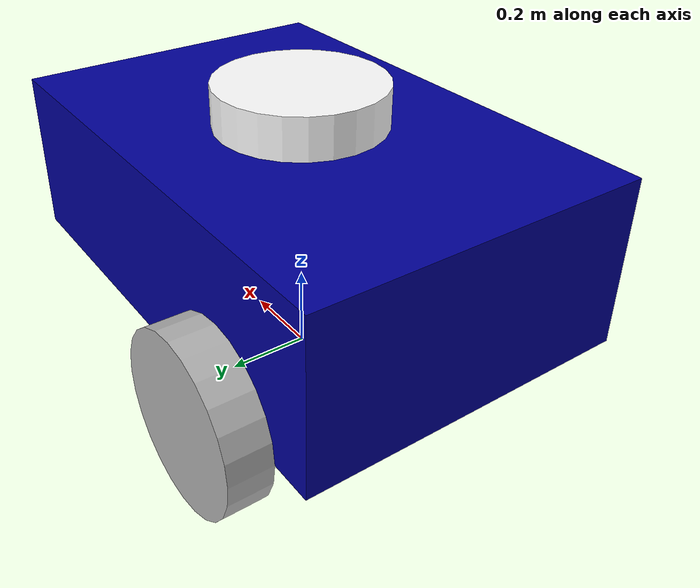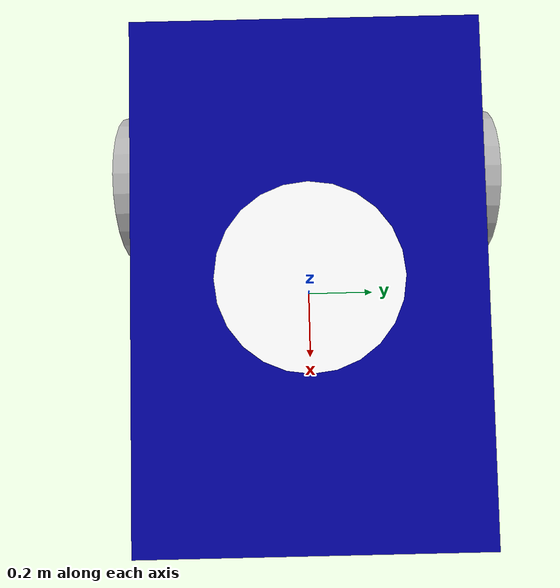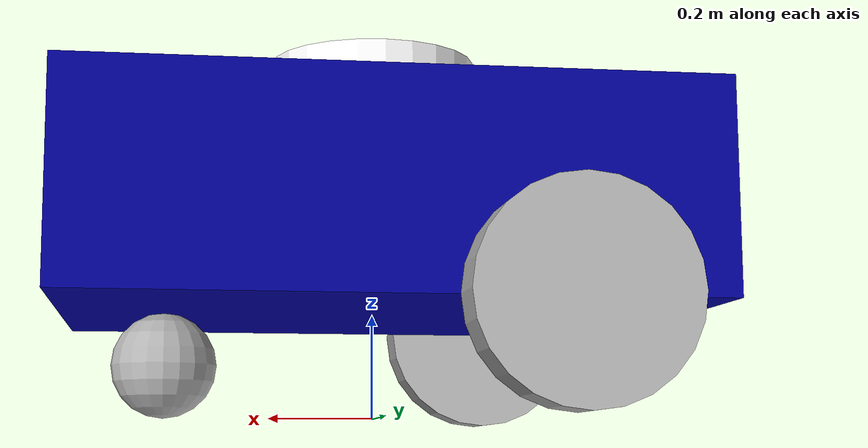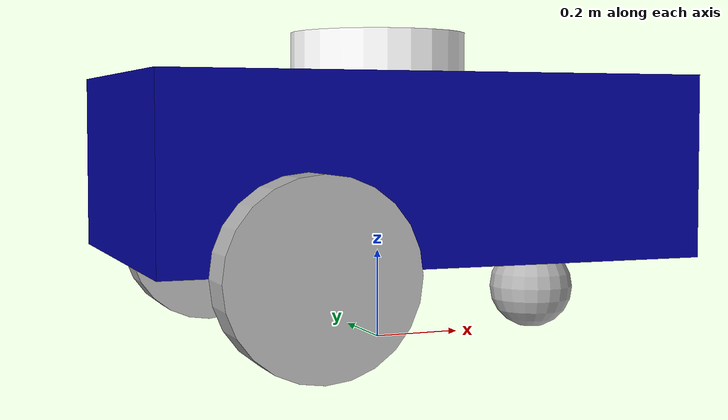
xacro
<?xml version="1.0"?> <!-- Modified xacro urdf model -->

<!-- xmlns:xacro="http://www.ros.org/wiki/xacro" is a necessary import -->
<robot name="my_robot" xmlns:xacro="http://www.ros.org/wiki/xacro">

    <!-- import common properties -->
    <xacro:include filename="common_properties.xacro" />

    <!-- import mobile base -->
    <xacro:include filename="mobile_base.xacro" />

</robot>

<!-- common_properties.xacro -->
<robot xmlns:xacro="http://www.ros.org/wiki/xacro">

    <!-- Declaring material colours here -->
	<material name="grey">
		<color rgba="0.7 0.7 0.7 1" />
	</material>

	<material name="blue">
		<color rgba="0 0 0.6 1" />
	</material>

	<material name="white">
		<color rgba="1 1 1 1" />
	</material>

    <xacro:macro name="cuboid_inertia" params="m l w h xyz rpy">
        <inertial>
            <origin xyz="${xyz}" rpy="${rpy}" />
            <mass value="${m}" />
            <inertia ixx="${m/12 * (h*h + w*w)}" ixy="0" ixz="0"
                    iyy="${m/12 * (l*l + h*h)}" iyz="0"
                    izz="${m/12 * (l*l + w*w)}" />
        </inertial>
    </xacro:macro>

    <xacro:macro name="cylinder_inertia" params="m r h xyz rpy">
        <inertial>
            <origin xyz="${xyz}" rpy="${rpy}" />
            <mass value="${m}" />
            <inertia ixx="${m/12 * (3*r*r + h*h)}" ixy="0" ixz="0"
                    iyy="${m/12 * (3*r*r + h*h)}" iyz="0"
                    izz="${m/2 * (r*r)}" />
        </inertial>
    </xacro:macro>

    <xacro:macro name="sphere_inertia" params="m r xyz rpy">
        <inertial>
            <origin xyz="${xyz}" rpy="${rpy}" />
            <mass value="${m}" />
            <inertia ixx="${2*m/5 * (r*r)}" ixy="0" ixz="0"
                    iyy="${2*m/5 * (r*r)}" iyz="0"
                    izz="${2*m/5 * (r*r)}" />
        </inertial>
    </xacro:macro>

</robot>

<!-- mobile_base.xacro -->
<robot xmlns:xacro="http://www.ros.org/wiki/xacro">

    <!-- xacro properties for geometries -->
    <xacro:property name="scale" value="2.0" />
    <xacro:property name="base_length" value="${0.6 * scale}" />
    <xacro:property name="base_width" value="${0.4 * scale}" />
    <xacro:property name="base_height" value="${0.2 * scale}" />
    <xacro:property name="lidar_radius" value="${0.1 * scale}" />
    <xacro:property name="lidar_length" value="${0.05 * scale}" />
    <xacro:property name="wheel_radius" value="${0.1 * scale}" />
    <xacro:property name="wheel_length" value="${0.05 * scale}" />

    <!-- virtual link declared -->
    <!-- Sets up robot on ground -->
    <link name="base_footprint" />

    <!-- Initialising base here -->
    <!-- Origin refers to the centre of the geometry-->
    <link name="base_link">
        <visual>
            <geometry>
                <box size="${base_length} ${base_width} ${base_height}" />
            </geometry>
            <origin xyz="0 0 ${base_height / 2}" rpy="0 0 0" />
            <material name="blue"/>
        </visual>

        <collision>
            <geometry>
                <box size="${base_length} ${base_width} ${base_height}" />
            </geometry>
            <origin xyz="0 0 ${base_height / 2}" rpy="0 0 0" />
            <material name="grey"/>
        </collision>

        <xacro:cuboid_inertia m="5.0" l="${base_length}" w="${base_width}" h="${base_height}"
                                xyz="0 0 ${base_height / 2}" rpy="0 0 0" />
    </link>

    <!-- Initialising lidar here -->
    <!-- Needs to be a child link  -->
    <!-- A joint is needed between base and lidar.  -->
    <link name="lidar_link">
        <visual>
            <geometry>
                <cylinder radius="${lidar_radius}" length="${lidar_length}" />
            </geometry>
            <origin xyz="0 0 0" rpy="0 0 0" />
            <material name="white" />
        </visual>

        <collision>
            <geometry>
                <cylinder radius="${lidar_radius}" length="${lidar_length}" />
            </geometry>
            <origin xyz="0 0 0" rpy="0 0 0" />
            <material name="grey" />
        </collision>

        <xacro:cylinder_inertia m="0.25" r="${lidar_radius}" h="${lidar_length}" xyz="0 0 0" rpy="0 0 0" />
    </link>

    <!-- Initialising wheels here -->
    <!-- rpy is calibrated in radians  -->

    <!-- xacro:macro declared here, basically a function in xacro -->
    <!-- xacro:macro replaces redundant wheel links -->
    <xacro:macro name="wheels_link" params="prefix">
        <link name="back_${prefix}_wheel_link">
            <visual>
                <geometry>
                    <cylinder radius="${wheel_radius}" length="${wheel_length}" />
                </geometry>
                <origin xyz="0 0 0" rpy="${pi / 2} 0 0" />
                <material name="grey" />
            </visual>

            <collision>
                <geometry>
                    <sphere radius="${wheel_radius}" />
                </geometry>
                <origin xyz="0 0 0" rpy="0 0 0" />
                <material name="grey" />
            </collision>

        <xacro:cylinder_inertia m="1.0" r="${wheel_radius}" h="${wheel_length}" xyz="0 0 0" rpy="${pi / 2} 0 0" />

        </link>
    </xacro:macro>

    <xacro:wheels_link prefix="left" />
    <xacro:wheels_link prefix="right" />

    <!-- Initialising castor wheel here -->
    <link name="castor_wheel_link">
        <visual>
            <geometry>
                <sphere radius="${wheel_radius / 2}"/>
            </geometry>
            <origin xyz="0 0 0" rpy="0 0 0" />
            <material name="grey" />
        </visual>

        <collision>
            <geometry>
                <sphere radius="${wheel_radius / 2}"/>
            </geometry>
            <origin xyz="0 0 0" rpy="0 0 0" />
            <material name="grey" />
        </collision>

        <xacro:sphere_inertia m="0.5" r="${wheel_radius/2}" xyz="0 0 0" rpy="0 0 0" />
    </link>

    <!-- Joint declared here  -->
    <!-- Keep base_link constant and child links origins constant  -->
    <!-- Adjust the joint origin only  -->
    <!-- If not enough. then adjust child links origins -->
    <joint name="base_joint" type="fixed">
        <parent link="base_footprint" />
        <child link="base_link" />
        <origin xyz="0 0 ${wheel_radius}" rpy="0 0 0" />
    </joint>

    <joint name="base_lidar_joint" type="fixed">
        <parent link="base_link" />
        <child link="lidar_link" />
        <origin xyz="0 0 ${base_height + lidar_length / 2}" rpy="0 0 0" />
    </joint>

    <joint name="base_back_left_wheel_joint" type="continuous">
        <parent link="base_link" />
        <child link="back_left_wheel_link" />
        <origin xyz="${-base_length / 4} ${base_width / 2 + wheel_length / 2} 0" rpy="0 0 0" />

        <!-- Declare rotation about given axis -->
        <axis xyz="0 1 0" />
    </joint>

    <joint name="base_back_right_wheel_joint" type="continuous">
        <parent link="base_link" />
        <child link="back_right_wheel_link" />
        <origin xyz="${-base_length / 4} ${-base_width / 2 - wheel_length / 2} 0" rpy="0 0 0" />

        <!-- Declare rotation about given axis -->
        <axis xyz="0 1 0" />
    </joint>

    <joint name="base_castor_wheel_joint" type="fixed">
        <parent link="base_link" />
        <child link="castor_wheel_link" />
        <origin xyz="${base_length / 3} 0 ${-wheel_radius / 2}" rpy="0 0 0" />
    </joint>

</robot>
